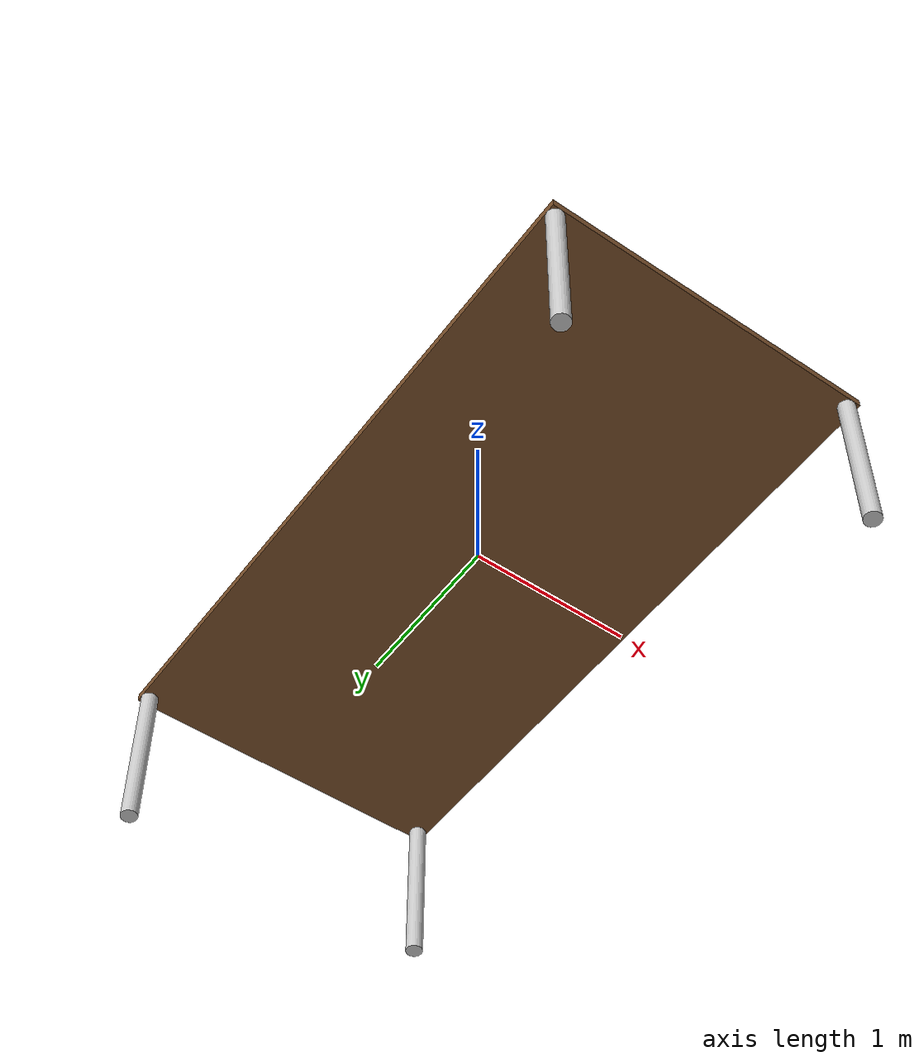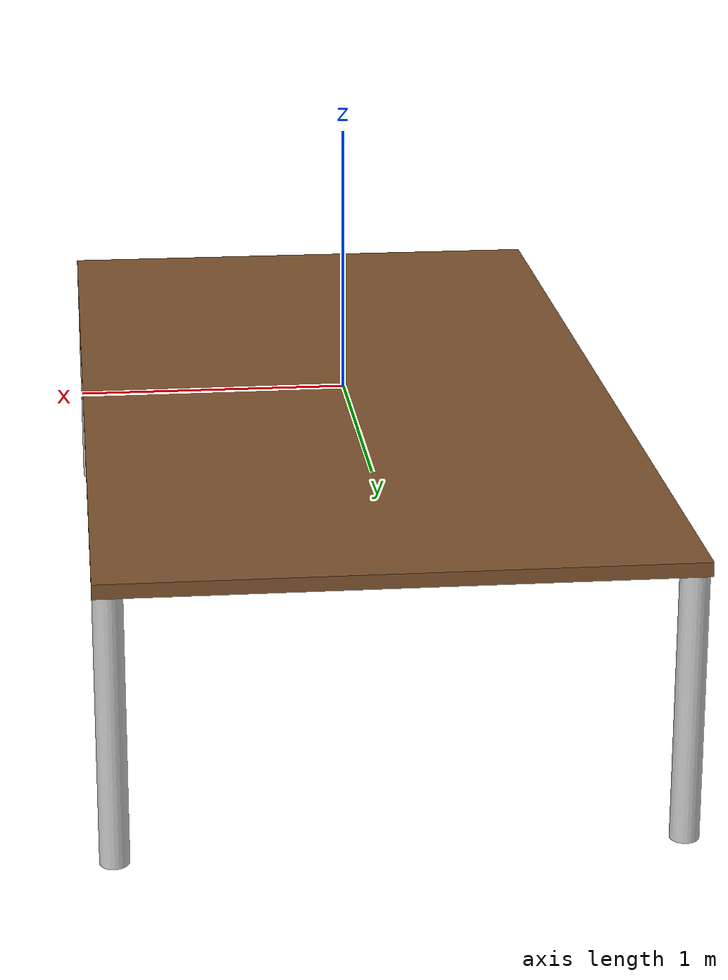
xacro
<?xml version="1.0" encoding="UTF-8"?>
<robot xmlns:xacro="http://wiki.ros.org/xacro" name="rrbot">

  <!-- copy and paste the contents of "rrbot_macro.xacro" here -->
  <xacro:include filename="materials.xacro" />
  <xacro:include filename="table_macro.xacro"/>

  <!-- create link fixed to the "world" -->
  <link name="world" />

  <!-- create the first robot -->
  <xacro:table prefix="table" parent="world">
    <!-- position robot in the world -->
    <origin xyz="0 0 0" rpy="0 0 0" />
  </xacro:table>

</robot>

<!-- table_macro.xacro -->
<robot xmlns:xacro="http://www.ros.org/wiki/xacro">

  <xacro:macro name="table" params="prefix parent *origin">

    <!-- Constants for robot dimensions -->
    <xacro:property name="table_length" value="4" /> <!-- Square dimensions (widthxwidth) of beams -->
    <xacro:property name="table_width" value="2" /> <!-- base_link -->
    <xacro:property name="table_height" value="1" /> <!-- link1 -->
    <xacro:property name="table_thickness" value=".05" /> <!-- link2 -->
    <xacro:property name="leg_length" value="${table_height - table_thickness}" />
    <xacro:property name="leg_radius" value ="0.05"/>

    <joint name="${prefix}base_joint" type="fixed">
      <xacro:insert_block name="origin" />
      <parent link="${parent}" />
      <child link="${prefix}top" />
    </joint>

    <!-- Base Link -->
    <link name="${prefix}top">
      <visual>
        <origin xyz="0 0 ${-table_thickness/2}" rpy="0 0 0" />
        <geometry>
          <box size="${table_width} ${table_length} ${table_thickness}" />
        </geometry>
        <material name="brown" />
      </visual>
    </link>

    <joint name="${prefix}leg-table1" type="fixed">
      <parent link="${prefix}top" />
      <child link="${prefix}leg1" />
      <origin xyz="${table_width/2 - leg_radius} ${table_length/2 - leg_radius} ${-leg_length/2 - table_thickness}" rpy="0 0 0" />
      <axis xyz="0 1 0" />
    </joint>

    <!-- Middle Link -->
    <link name="${prefix}leg1">
      <visual>
        <origin xyz="0 0 0" rpy="0 0 0" />
        <geometry>
            <cylinder radius="${leg_radius}" length="${leg_length}"/>
        </geometry>
        <material name="light_grey" />
      </visual>
    </link>

    <joint name="${prefix}leg-table2" type="fixed">
      <parent link="${prefix}top" />
      <child link="${prefix}leg2" />
      <origin xyz="${-table_width/2 + leg_radius} ${-table_length/2 + leg_radius} ${-leg_length/2 - table_thickness}" rpy="0 0 0" />
      <axis xyz="0 1 0" />
    </joint>

    <!-- Middle Link -->
    <link name="${prefix}leg2">
      <visual>
        <origin xyz="0 0 0" rpy="0 0 0" />
        <geometry>
            <cylinder radius="${leg_radius}" length="${leg_length}"/>
        </geometry>
        <material name="light_grey" />
      </visual>
    </link>

    <joint name="${prefix}leg-table3" type="fixed">
      <parent link="${prefix}top" />
      <child link="${prefix}leg3" />
      <origin xyz="${-table_width/2 + leg_radius} ${table_length/2 - leg_radius} ${-leg_length/2 - table_thickness}" rpy="0 0 0" />
      <axis xyz="0 1 0" />
    </joint>

    <!-- Middle Link -->
    <link name="${prefix}leg3">
      <visual>
        <origin xyz="0 0 0" rpy="0 0 0" />
        <geometry>
            <cylinder radius="${leg_radius}" length="${leg_length}"/>
        </geometry>
        <material name="light_grey" />
      </visual>
    </link>

    <joint name="${prefix}leg-table4" type="fixed">
      <parent link="${prefix}top" />
      <child link="${prefix}leg4" />
      <origin xyz="${table_width/2 - leg_radius} ${-table_length/2 + leg_radius} ${-leg_length/2 - table_thickness}" rpy="0 0 0" />
      <axis xyz="0 1 0" />
    </joint>

    <!-- Middle Link -->
    <link name="${prefix}leg4">
      <visual>
        <origin xyz="0 0 0" rpy="0 0 0" />
        <geometry>
            <cylinder radius="${leg_radius}" length="${leg_length}"/>
        </geometry>
        <material name="light_grey" />
      </visual>
    </link>

  </xacro:macro>

</robot>
